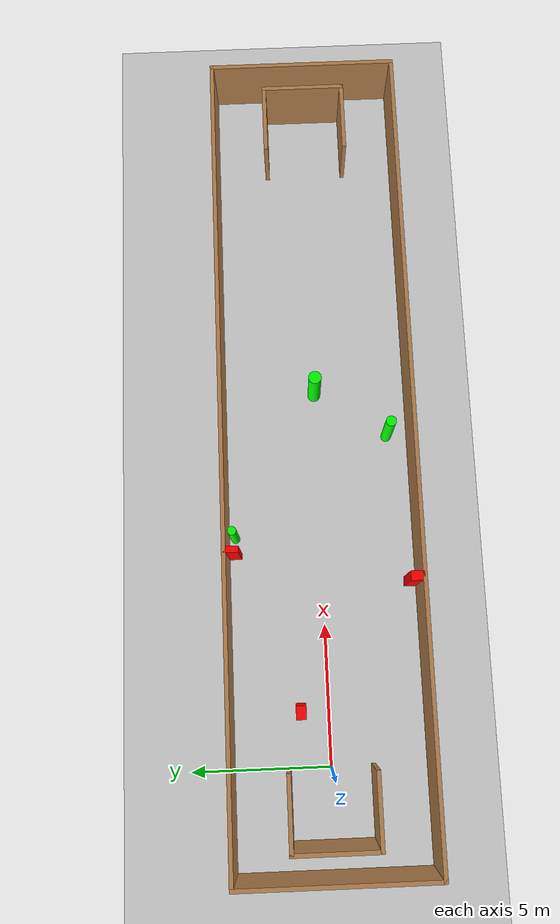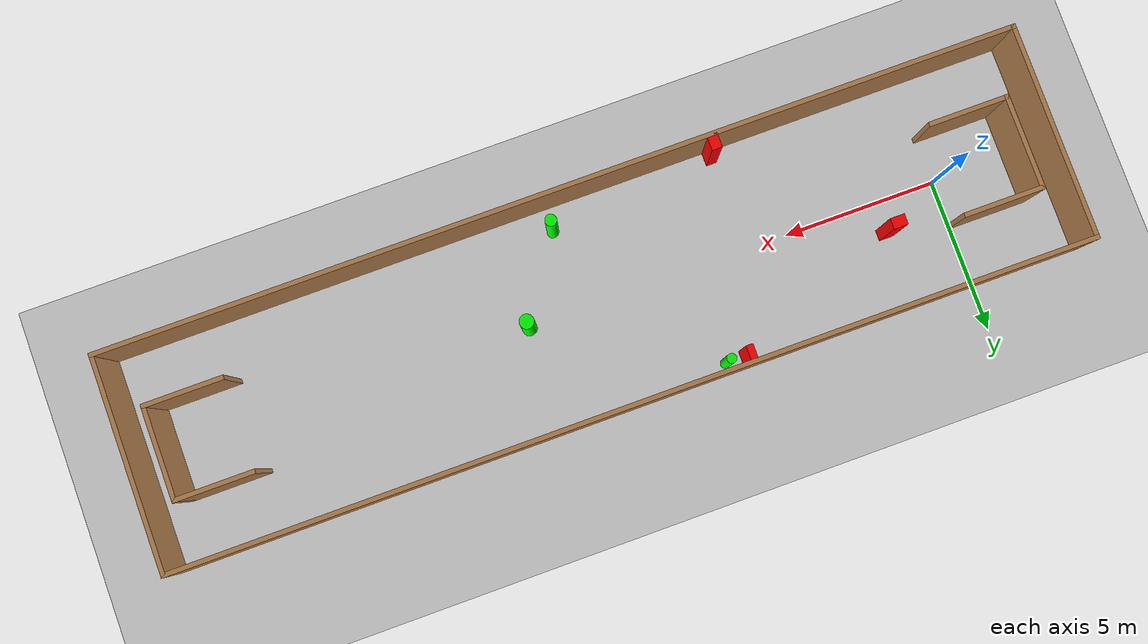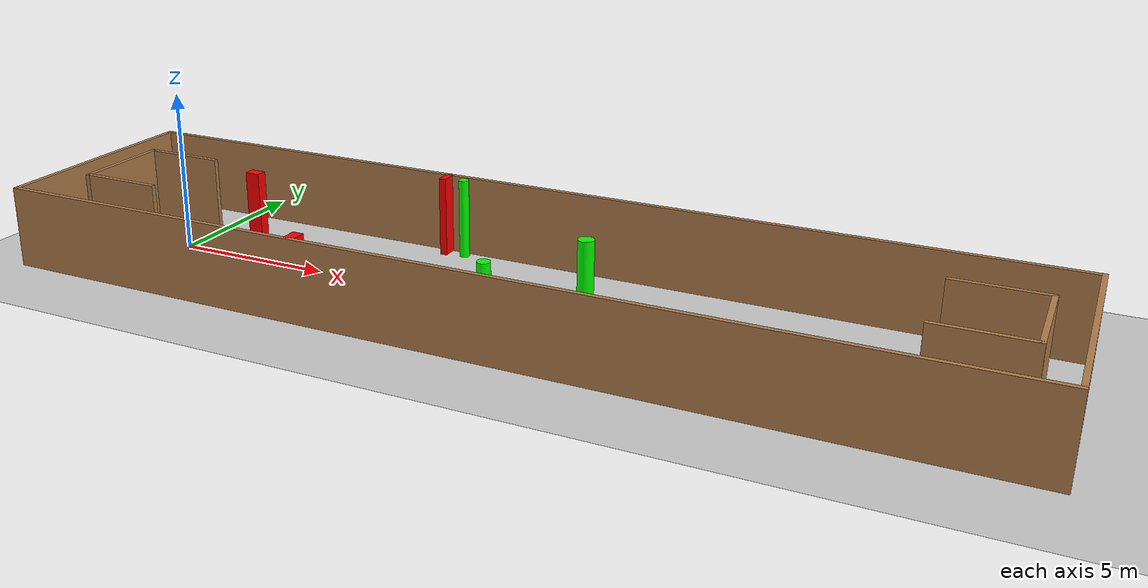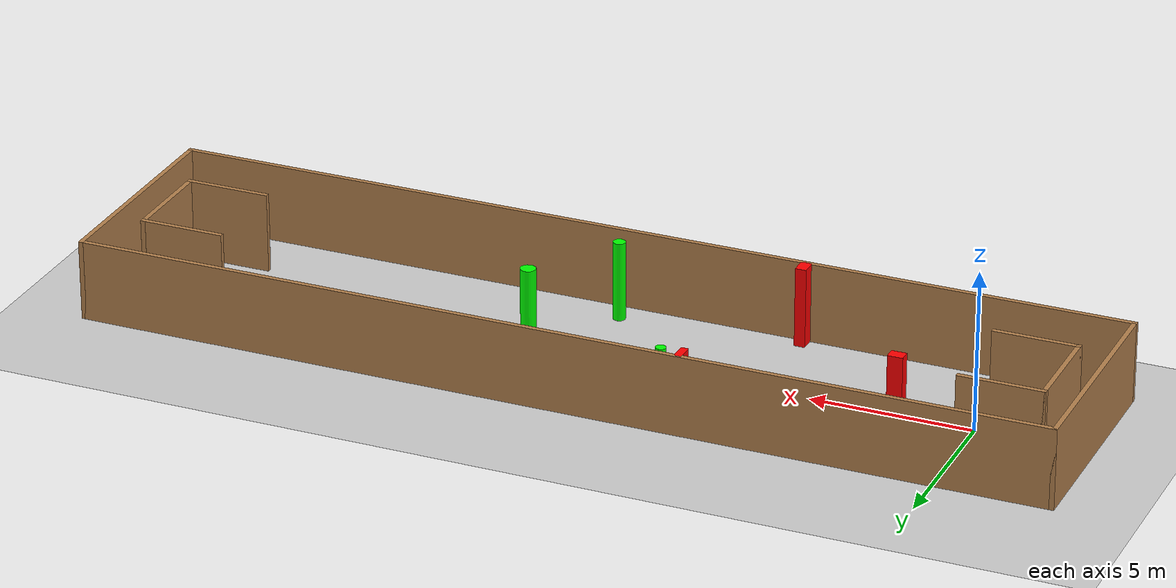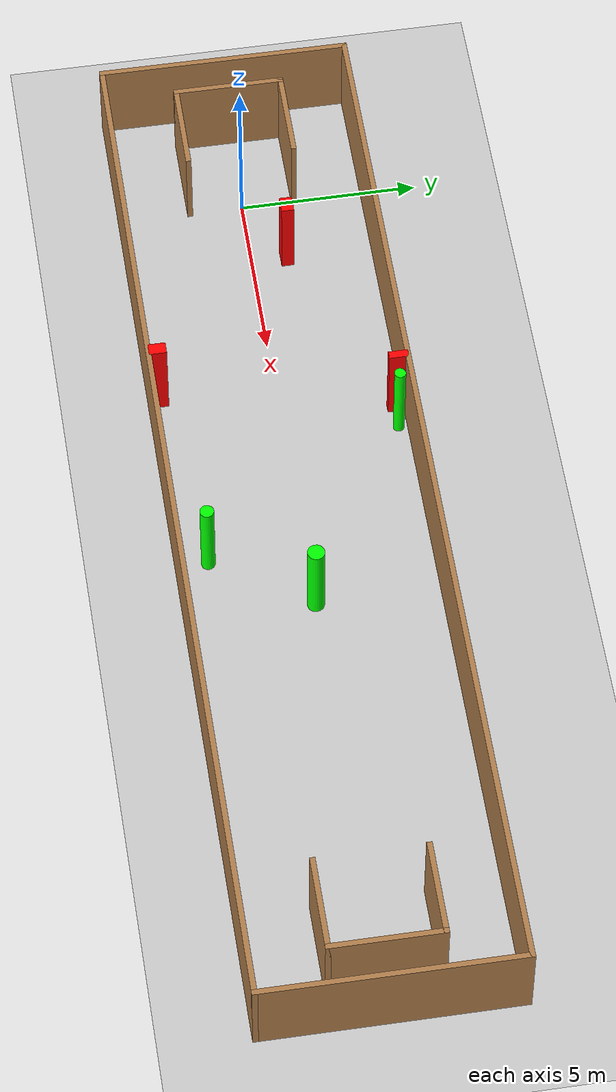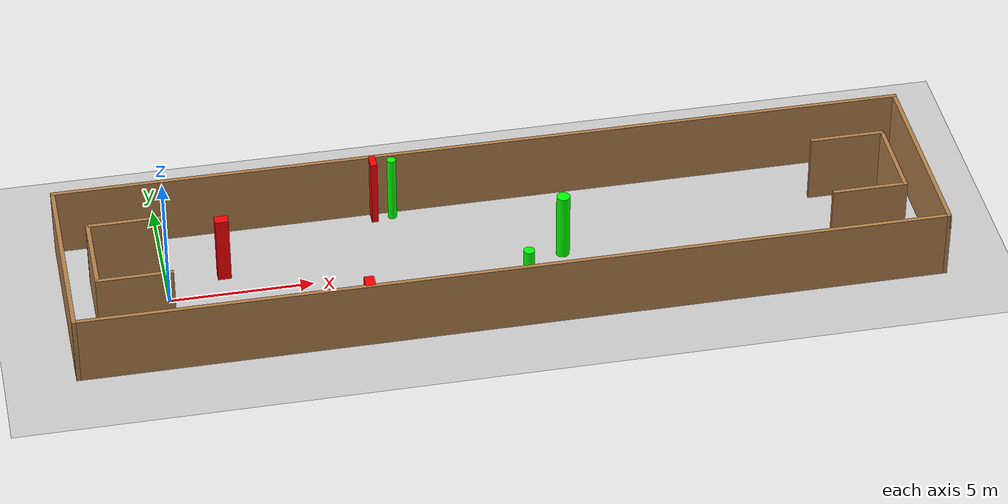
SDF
<sdf version="1.7">
 <world name="default">
  <light name="sun" type="directional">
   <pose>0 0 10 0 -0 0</pose>
   <diffuse>0.8 0.8 0.8 1</diffuse>
   <specular>0.2 0.2 0.2 1</specular>
   <attenuation>
    <range>1000</range>
    <constant>0.9</constant>
    <linear>0.01</linear>
    <quadratic>0.001</quadratic>
   </attenuation>
   <direction>-0.5 0.1 -0.9</direction>
   <spot><inner_angle>0</inner_angle><outer_angle>0</outer_angle><falloff>0</falloff></spot>
  </light>
  <model name="ground_plane">
   <static>1</static>
   <link name="link">
    <collision name="collision">
     <geometry><plane><normal>0 0 1</normal><size>100 100</size></plane></geometry>
     <surface>
      <contact><collide_bitmask>65535</collide_bitmask></contact>
      <friction><ode><mu>100</mu><mu2>50</mu2></ode></friction>
     </surface>
    </collision>
    <visual name="visual">
     <cast_shadows>0</cast_shadows>
     <geometry><plane><normal>0 0 1</normal><size>100 100</size></plane></geometry>
     <material>
      <script><uri>file://media/materials/scripts/gazebo.material</uri><name>Gazebo/Grey</name></script>
     </material>
    </visual>
   </link>
  </model>
  <gravity>0 0 -9.8</gravity>
  <magnetic_field>6e-06 2.3e-05 -4.2e-05</magnetic_field>
  <atmosphere type="adiabatic"/>
  <physics type="ode">
   <max_step_size>0.001</max_step_size>
   <real_time_factor>1</real_time_factor>
   <real_time_update_rate>1000</real_time_update_rate>
  </physics>
  <scene><ambient>0.4 0.4 0.4 1</ambient><background>0.7 0.7 0.7 1</background><shadows>1</shadows></scene>
  <spherical_coordinates>
   <surface_model>EARTH_WGS84</surface_model>
   <latitude_deg>0</latitude_deg>
   <longitude_deg>0</longitude_deg>
   <elevation>0</elevation>
   <heading_deg>0</heading_deg>
  </spherical_coordinates>
  <model name="my_base_walls">
   <link name="Wall_0">
    <collision name="Wall_0_Collision">
     <geometry><box><size>7.15 0.15 2.5</size></box></geometry>
     <pose>0 0 1.25 0 -0 0</pose>
    </collision>
    <visual name="Wall_0_Visual">
     <pose>0 0 1.25 0 -0 0</pose>
     <geometry><box><size>7.15 0.15 2.5</size></box></geometry>
     <material>
      <script><uri>file://media/materials/scripts/gazebo.material</uri><name>Gazebo/Wood</name></script>
      <ambient>1 1 1 1</ambient>
     </material>
     <meta><layer>0</layer></meta>
    </visual>
    <pose>-15 0 0 0 -0 1.5708</pose>
   </link>
   <link name="Wall_10">
    <collision name="Wall_10_Collision">
     <geometry><box><size>2.65 0.15 2.5</size></box></geometry>
     <pose>0 0 1.25 0 -0 0</pose>
    </collision>
    <visual name="Wall_10_Visual">
     <pose>0 0 1.25 0 -0 0</pose>
     <geometry><box><size>2.65 0.15 2.5</size></box></geometry>
     <material>
      <script><uri>file://media/materials/scripts/gazebo.material</uri><name>Gazebo/Wood</name></script>
      <ambient>1 1 1 1</ambient>
     </material>
     <meta><layer>0</layer></meta>
    </visual>
    <pose>-12.75 -1.5 0 0 -0 0</pose>
   </link>
   <link name="Wall_12">
    <collision name="Wall_12_Collision">
     <geometry><box><size>2.65 0.15 2.5</size></box></geometry>
     <pose>0 0 1.25 0 -0 0</pose>
    </collision>
    <visual name="Wall_12_Visual">
     <pose>0 0 1.25 0 -0 0</pose>
     <geometry><box><size>2.65 0.15 2.5</size></box></geometry>
     <material>
      <script><uri>file://media/materials/scripts/gazebo.material</uri><name>Gazebo/Wood</name></script>
      <ambient>1 1 1 1</ambient>
     </material>
     <meta><layer>0</layer></meta>
    </visual>
    <pose>-12.75 1.5 0 0 -0 0</pose>
   </link>
   <link name="Wall_14">
    <collision name="Wall_14_Collision">
     <geometry><box><size>3.15 0.15 2.5</size></box></geometry>
     <pose>0 0 1.25 0 -0 0</pose>
    </collision>
    <visual name="Wall_14_Visual">
     <pose>0 0 1.25 0 -0 0</pose>
     <geometry><box><size>3.15 0.15 2.5</size></box></geometry>
     <material>
      <script><uri>file://media/materials/scripts/gazebo.material</uri><name>Gazebo/Wood</name></script>
      <ambient>1 1 1 1</ambient>
     </material>
     <meta><layer>0</layer></meta>
    </visual>
    <pose>14 0 0 0 -0 -1.5708</pose>
   </link>
   <link name="Wall_15">
    <collision name="Wall_15_Collision">
     <geometry><box><size>2.65 0.15 2.5</size></box></geometry>
     <pose>0 0 1.25 0 -0 0</pose>
    </collision>
    <visual name="Wall_15_Visual">
     <pose>0 0 1.25 0 -0 0</pose>
     <geometry><box><size>2.65 0.15 2.5</size></box></geometry>
     <material>
      <script><uri>file://media/materials/scripts/gazebo.material</uri><name>Gazebo/Wood</name></script>
      <ambient>1 1 1 1</ambient>
     </material>
     <meta><layer>0</layer></meta>
    </visual>
    <pose>12.75 -1.5 0 0 -0 3.14159</pose>
   </link>
   <link name="Wall_17">
    <collision name="Wall_17_Collision">
     <geometry><box><size>2.65 0.15 2.5</size></box></geometry>
     <pose>0 0 1.25 0 -0 0</pose>
    </collision>
    <visual name="Wall_17_Visual">
     <pose>0 0 1.25 0 -0 0</pose>
     <geometry><box><size>2.65 0.15 2.5</size></box></geometry>
     <material>
      <script><uri>file://media/materials/scripts/gazebo.material</uri><name>Gazebo/Wood</name></script>
      <ambient>1 1 1 1</ambient>
     </material>
     <meta><layer>0</layer></meta>
    </visual>
    <pose>12.75 1.5 0 0 -0 3.14159</pose>
   </link>
   <link name="Wall_2">
    <collision name="Wall_2_Collision">
     <geometry><box><size>30.15 0.15 2.5</size></box></geometry>
     <pose>0 0 1.25 0 -0 0</pose>
    </collision>
    <visual name="Wall_2_Visual">
     <pose>0 0 1.25 0 -0 0</pose>
     <geometry><box><size>30.15 0.15 2.5</size></box></geometry>
     <material>
      <script><uri>file://media/materials/scripts/gazebo.material</uri><name>Gazebo/Wood</name></script>
      <ambient>1 1 1 1</ambient>
     </material>
     <meta><layer>0</layer></meta>
    </visual>
    <pose>-0 -3.5 0 0 -0 0</pose>
   </link>
   <link name="Wall_4">
    <collision name="Wall_4_Collision">
     <geometry><box><size>30.15 0.15 2.5</size></box></geometry>
     <pose>0 0 1.25 0 -0 0</pose>
    </collision>
    <visual name="Wall_4_Visual">
     <pose>0 0 1.25 0 -0 0</pose>
     <geometry><box><size>30.15 0.15 2.5</size></box></geometry>
     <material>
      <script><uri>file://media/materials/scripts/gazebo.material</uri><name>Gazebo/Wood</name></script>
      <ambient>1 1 1 1</ambient>
     </material>
     <meta><layer>0</layer></meta>
    </visual>
    <pose>-0 3.5 0 0 -0 0</pose>
   </link>
   <link name="Wall_6">
    <collision name="Wall_6_Collision">
     <geometry><box><size>7.15 0.15 2.5</size></box></geometry>
     <pose>0 0 1.25 0 -0 0</pose>
    </collision>
    <visual name="Wall_6_Visual">
     <pose>0 0 1.25 0 -0 0</pose>
     <geometry><box><size>7.15 0.15 2.5</size></box></geometry>
     <material>
      <script><uri>file://media/materials/scripts/gazebo.material</uri><name>Gazebo/Wood</name></script>
      <ambient>1 1 1 1</ambient>
     </material>
     <meta><layer>0</layer></meta>
    </visual>
    <pose>15 0 0 0 -0 -1.5708</pose>
   </link>
   <link name="Wall_9">
    <collision name="Wall_9_Collision">
     <geometry><box><size>3.15 0.15 2.5</size></box></geometry>
     <pose>0 0 1.25 0 -0 0</pose>
    </collision>
    <visual name="Wall_9_Visual">
     <pose>0 0 1.25 0 -0 0</pose>
     <geometry><box><size>3.15 0.15 2.5</size></box></geometry>
     <material>
      <script><uri>file://media/materials/scripts/gazebo.material</uri><name>Gazebo/Wood</name></script>
      <ambient>1 1 1 1</ambient>
     </material>
     <meta><layer>0</layer></meta>
    </visual>
    <pose>-14 0 0 0 -0 -1.5708</pose>
   </link>
   <static>1</static>
   <pose>11.5 0 0 0 -0 0</pose>
  </model>
  <model name="cylinder1">
   <static>1</static>
   <link name="link">
    <inertial>
     <mass>1</mass>
     <inertia><ixx>0.5</ixx><ixy>0</ixy><ixz>0</ixz><iyy>0.5</iyy><iyz>0</iyz><izz>1</izz></inertia>
    </inertial>
    <collision name="collision">
     <geometry><cylinder><radius>0.15738522004775735</radius><length>2.5</length></cylinder></geometry>
    </collision>
    <visual name="visual">
     <geometry><cylinder><radius>0.15738522004775735</radius><length>2.5</length></cylinder></geometry>
     <material>
      <ambient>0 1 0 1</ambient>
      <diffuse>0 1 0 1</diffuse>
      <specular>0.1 0.1 0.1 1</specular>
      <emissive>0 0 0 0</emissive>
     </material>
    </visual>
   </link>
   <pose>8.282276982676391 3.185961982321455 1.25 0 0 0</pose>
  </model>
  <model name="cylinder2">
   <static>1</static>
   <link name="link">
    <inertial>
     <mass>1</mass>
     <inertia><ixx>0.5</ixx><ixy>0</ixy><ixz>0</ixz><iyy>0.5</iyy><iyz>0</iyz><izz>1</izz></inertia>
    </inertial>
    <collision name="collision">
     <geometry><cylinder><radius>0.19263889449532512</radius><length>2.5</length></cylinder></geometry>
    </collision>
    <visual name="visual">
     <geometry><cylinder><radius>0.19263889449532512</radius><length>2.5</length></cylinder></geometry>
     <material>
      <ambient>0 1 0 1</ambient>
      <diffuse>0 1 0 1</diffuse>
      <specular>0.1 0.1 0.1 1</specular>
      <emissive>0 0 0 0</emissive>
     </material>
    </visual>
   </link>
   <pose>12.015474607959872 -2.6537565584559686 1.25 0 0 0</pose>
  </model>
  <model name="cylinder3">
   <static>1</static>
   <link name="link">
    <inertial>
     <mass>1</mass>
     <inertia><ixx>0.5</ixx><ixy>0</ixy><ixz>0</ixz><iyy>0.5</iyy><iyz>0</iyz><izz>1</izz></inertia>
    </inertial>
    <collision name="collision">
     <geometry><cylinder><radius>0.2375854687436253</radius><length>2.5</length></cylinder></geometry>
    </collision>
    <visual name="visual">
     <geometry><cylinder><radius>0.2375854687436253</radius><length>2.5</length></cylinder></geometry>
     <material>
      <ambient>0 1 0 1</ambient>
      <diffuse>0 1 0 1</diffuse>
      <specular>0.1 0.1 0.1 1</specular>
      <emissive>0 0 0 0</emissive>
     </material>
    </visual>
   </link>
   <pose>13.753715210713715 0.023479503479904906 1.25 0 0 0</pose>
  </model>
  <model name="box1">
   <static>1</static>
   <link name="link">
    <inertial>
     <mass>1</mass>
     <inertia><ixx>0.083</ixx><ixy>0</ixy><ixz>0</ixz><iyy>0.083</iyy><iyz>0</iyz><izz>0.083</izz></inertia>
    </inertial>
    <collision name="collision">
     <geometry><box><size>0.46661140515436056 0.3524038973358108 2.5</size></box></geometry>
    </collision>
    <visual name="visual">
     <geometry><box><size>0.46661140515436056 0.3524038973358108 2.5</size></box></geometry>
     <material>
      <ambient>1 0 0 1</ambient>
      <diffuse>1 0 0 1</diffuse>
      <specular>0.1 0.1 0.1 1</specular>
      <emissive>0 0 0 0</emissive>
     </material>
    </visual>
    <sensor name="my_contact" type="contact">
     <contact><collision>box_collision</collision><topic>__default_topic__</topic></contact>
    </sensor>
   </link>
   <pose>2.0170199502060573 0.9988220140548574 1.25 0 0 0</pose>
  </model>
  <model name="box2">
   <static>1</static>
   <link name="link">
    <inertial>
     <mass>1</mass>
     <inertia><ixx>0.083</ixx><ixy>0</ixy><ixz>0</ixz><iyy>0.083</iyy><iyz>0</iyz><izz>0.083</izz></inertia>
    </inertial>
    <collision name="collision">
     <geometry><box><size>0.3393076617830363 0.48689027925905376 2.5</size></box></geometry>
    </collision>
    <visual name="visual">
     <geometry><box><size>0.3393076617830363 0.48689027925905376 2.5</size></box></geometry>
     <material>
      <ambient>1 0 0 1</ambient>
      <diffuse>1 0 0 1</diffuse>
      <specular>0.1 0.1 0.1 1</specular>
      <emissive>0 0 0 0</emissive>
     </material>
    </visual>
    <sensor name="my_contact" type="contact">
     <contact><collision>box_collision</collision><topic>__default_topic__</topic></contact>
    </sensor>
   </link>
   <pose>6.462642541571457 -3.2438269204913266 1.25 0 0 0</pose>
  </model>
  <model name="box3">
   <static>1</static>
   <link name="link">
    <inertial>
     <mass>1</mass>
     <inertia><ixx>0.083</ixx><ixy>0</ixy><ixz>0</ixz><iyy>0.083</iyy><iyz>0</iyz><izz>0.083</izz></inertia>
    </inertial>
    <collision name="collision">
     <geometry><box><size>0.2269424954478546 0.5419744417327637 2.5</size></box></geometry>
    </collision>
    <visual name="visual">
     <geometry><box><size>0.2269424954478546 0.5419744417327637 2.5</size></box></geometry>
     <material>
      <ambient>1 0 0 1</ambient>
      <diffuse>1 0 0 1</diffuse>
      <specular>0.1 0.1 0.1 1</specular>
      <emissive>0 0 0 0</emissive>
     </material>
    </visual>
    <sensor name="my_contact" type="contact">
     <contact><collision>box_collision</collision><topic>__default_topic__</topic></contact>
    </sensor>
   </link>
   <pose>7.638293318231449 3.244839109622532 1.25 0 0 0</pose>
  </model>
 </world>
</sdf>
